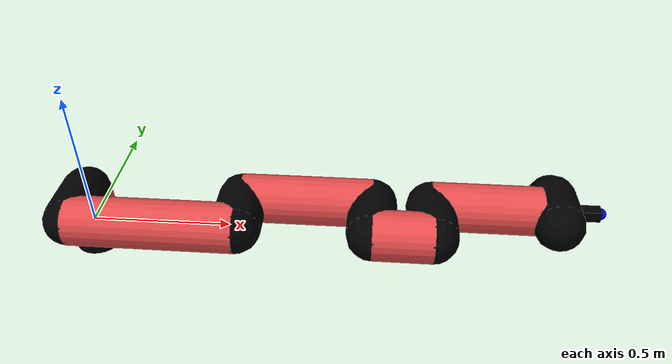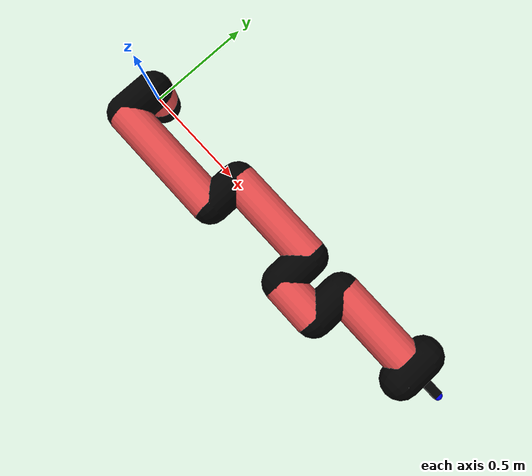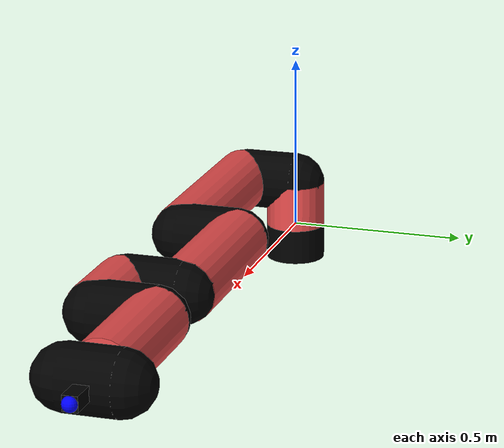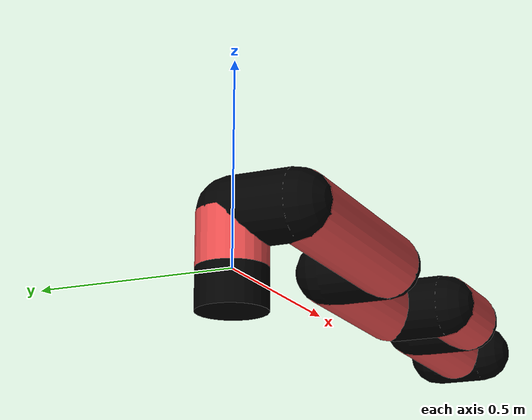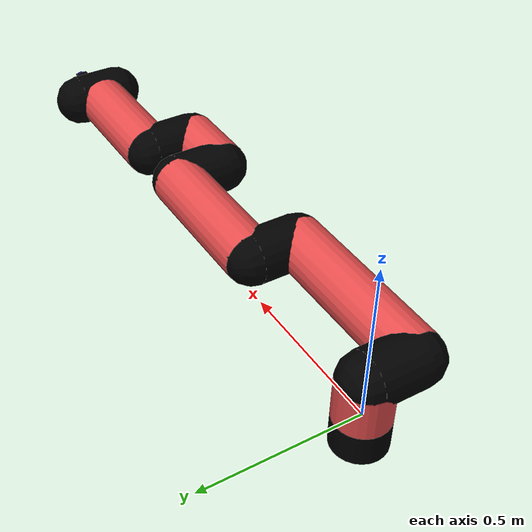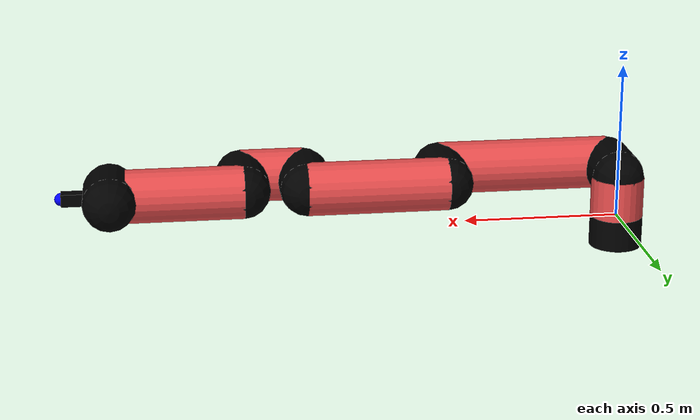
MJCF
<mujoco model="manipulator">
		<compiler angle="degree" coordinate="local" inertiafromgeom="auto" meshdir="meshes/"/>
		<option gravity="0 0 0" integrator="RK4" iterations="30" timestep="0.01"/>

		<default>
		<joint armature="1" limited="true" stiffness="10" damping="15" frictionloss="5.0"/>
		<geom conaffinity="1" condim="3" contype="1" friction=".5 .1 .1" margin="0.002"/>
		<motor ctrllimited="true"/>
		<position ctrllimited="true"/>
		</default>

		<asset>
		<texture builtin="gradient" height="100" rgb1="1.0 1.0 1.0" rgb2="1.0 1.0 1.0" type="skybox" width="100"/>
		<texture builtin="flat" height="32" name="arm_tex" rgb1="0.9 0.3 0.3" type="2d" width="32"/>
		<texture builtin="flat" height="32" name="gripper_tex" rgb1="0.0 0.0 0.0" type="cube" width="32"/>

		<material name="arm_mat" shininess="0.1" specular="0.1" texture="arm_tex"/>
		<material name="gripper_mat" shininess="1" specular="1" texture="gripper_tex"/>
		</asset>

		<worldbody>
		<light cutoff="45" diffuse=".8 .8 .8" dir="0 0.16 -1" directional="false" name="light" pos="0 -2.0 8.0" specular="0.3 0.3 0.3"/>

		<body name="base_link" pos="0 0 -0.1">
		<geom fromto="0 0 0 0 0 0.1" material="arm_mat" name="base_link" rgba="0.0 0.0 0.0 1" size="0.085" type="cylinder"/>
		</body>

		<body name="l1" pos="0 0 0">
<geom fromto="0 0 0 0 0 0.13" material="arm_mat" name="l1" rgba="0.9 0.3 0.3 1" size="0.085" type="cylinder"/>
<geom fromto="0 0 0.13 0 -0.16 0.13" material="arm_mat" name="l1_ex" rgba="0.0 0.0 0.0 1" size="0.085" type="capsule"/>
<joint axis="0 0 1" name="j1" pos="0 0 0" range="-90 90" damping="12.38" frictionloss="15.79"/>

<body name="l2" pos="0 -0.16 0.13">
<geom fromto="0 0 0 0.56 0 0" material="arm_mat" name="l2" rgba="0.9 0.3 0.3 1" size="0.085" type="cylinder"/>
<geom fromto="0.56 0 0 0.56 0.16 0" material="arm_mat" name="l2_ex" rgba="0.0 0.0 0.0 1" size="0.085" type="capsule"/>
<joint axis="0.0 1.0 0.0" name="j2" pos="0 0 0" range="-90 60" damping="28.19" frictionloss="7.76"/>

<body name="l3" pos="0.56 0.16 0">
<geom fromto="0 0 0 0.45 0 0" material="arm_mat" name="l3" rgba="0.9 0.3 0.3 1" size="0.085" type="cylinder"/>
<geom fromto="0.45 0 0 0.45 -0.16 0" material="arm_mat" name="l3_ex" rgba="0.0 0.0 0.0 1" size="0.085" type="capsule"/>
<joint axis="0.0 1.0 0.0" name="j3" pos="0 0 0" range="-30 60" damping="46.91" frictionloss="15.64"/>

<body name="l4" pos="0.45 -0.16 0">
<geom fromto="0 0 0 0.2 0 0" material="arm_mat" name="l4" rgba="0.9 0.3 0.3 1" size="0.085" type="cylinder"/>
<geom fromto="0.2 0 0 0.2 0.16 0" material="arm_mat" name="l4_ex" rgba="0.0 0.0 0.0 1" size="0.085" type="capsule"/>
<joint axis="0.0 1.0 0.0" name="j4" pos="0 0 0" range="-30 60" damping="34.24" frictionloss="15.76"/>

<body name="l5" pos="0.2 0.16 0">
<geom fromto="0 0 0 0.37 0 0" material="arm_mat" name="l5" rgba="0.9 0.3 0.3 1" size="0.085" type="cylinder"/>
<joint axis="0.0 1.0 0.0" name="j5" pos="0 0 0" range="-30 60" damping="35.83" frictionloss="7.11"/>

<body name="gripper" pos="0.37 0 0">
<geom fromto="0.05 -0.07 0 0.05 0.07 0" material="gripper_mat" name="gripper" rgba="0.0 0.0 0.0 1" size="0.085" type="capsule"/><joint axis="1 0 0" name="j6" pos="0 0 0" range="-90 90" damping="15" frictionloss="5.0"/><body name="finger" pos="0.1 0 0">
<geom fromto="0 0.0 0 0.1 0.0 0" material="gripper_mat" name="finger" rgba="0.0 0.0 0.0 1" size="0.020 0.06 0.06" type="box"/>
</body>
<site name="current" pos="0.2 0. 0.0" rgba="0. 0. 1.0 1" size="0.02" type="sphere"/>
</body>
</body>
</body>
</body>
</body>
</body>
</worldbody>
<actuator>
<motor ctrllimited="true" ctrlrange="-1.0 1.0" joint="j1" gear="60.37"/>
<motor ctrllimited="true" ctrlrange="-1.0 1.0" joint="j2" gear="38.04"/>
<motor ctrllimited="true" ctrlrange="-1.0 1.0" joint="j3" gear="42.69"/>
<motor ctrllimited="true" ctrlrange="-1.0 1.0" joint="j4" gear="84.12"/>
<motor ctrllimited="true" ctrlrange="-1.0 1.0" joint="j5" gear="83.99"/>
<motor ctrllimited="true" ctrlrange="-1.0 1.0" joint="j6" gear="80"/>
</actuator>
</mujoco>
